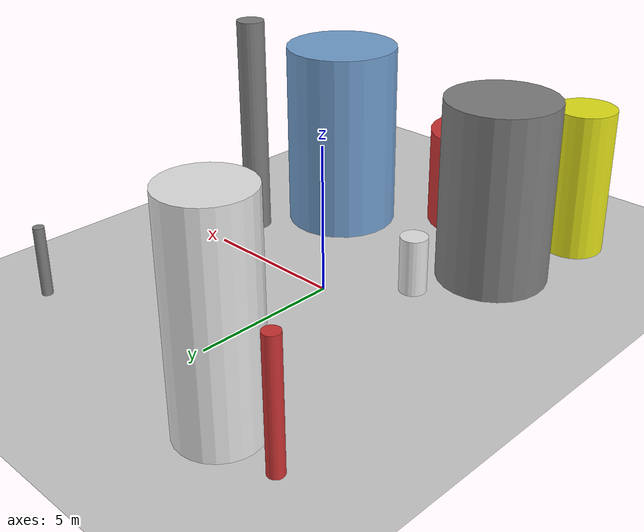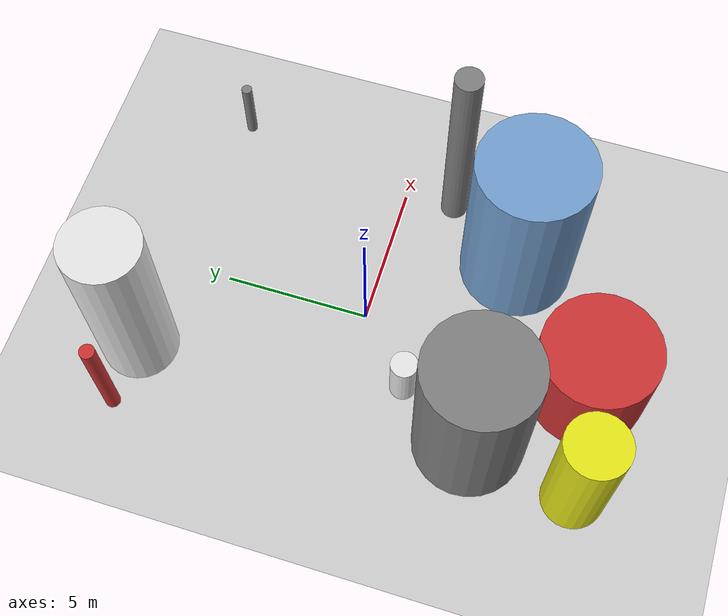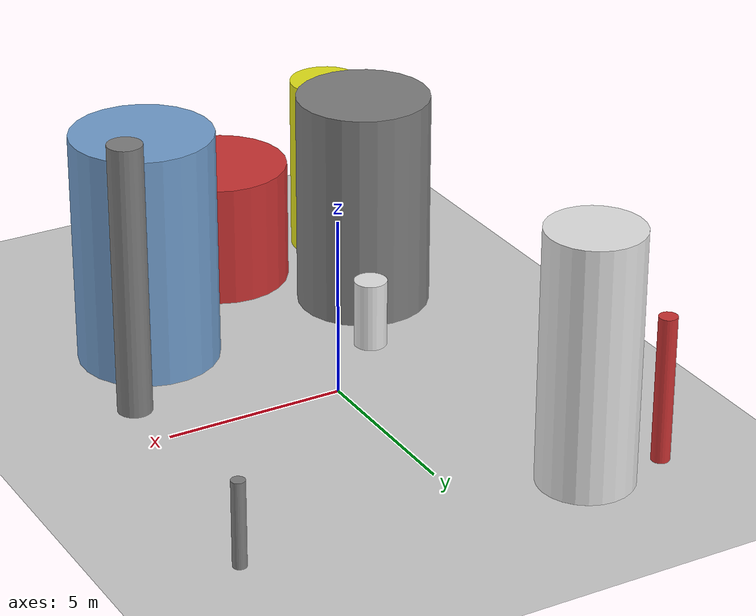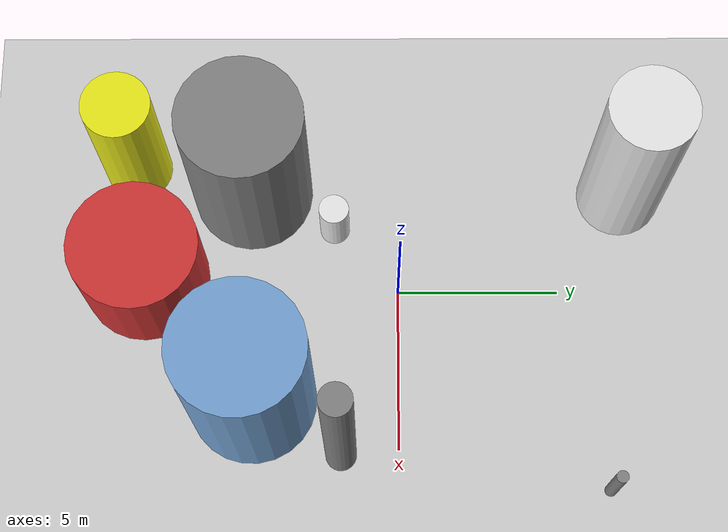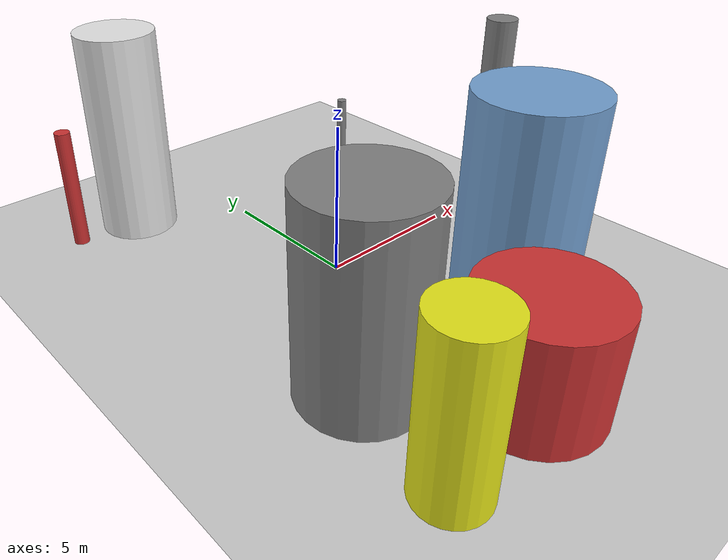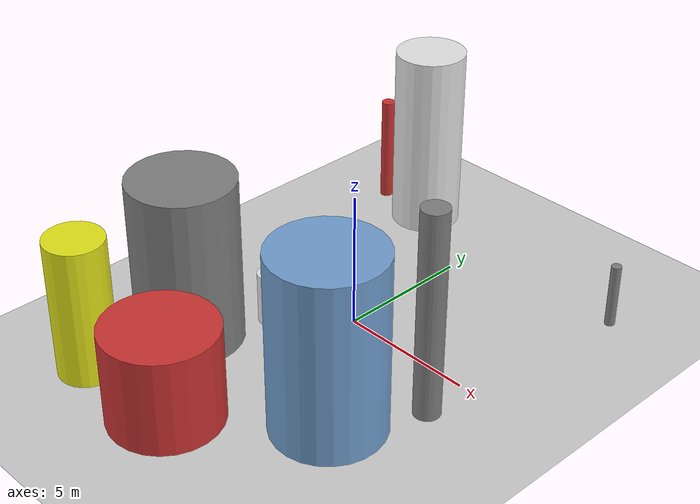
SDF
<?xml version='1.0'?>
<sdf version='1.6'>
  <world name='default'>
    <!-- Sun light -->
    <light name='sun' type='directional'>
      <cast_shadows>1</cast_shadows>
      <pose>0 0 10 0 0 0</pose>
      <diffuse>0.8 0.8 0.8 1</diffuse>
      <specular>0.2 0.2 0.2 1</specular>
      <attenuation>
        <range>1000</range>
        <constant>0.9</constant>
        <linear>0.01</linear>
        <quadratic>0.001</quadratic>
      </attenuation>
      <direction>-0.5 0.1 -0.9</direction>
    </light>

    <!-- Ground plane -->
    <model name='ground_plane'>
      <static>1</static>
      <link name='link'>
        <collision name='collision'>
          <geometry>
            <plane>
              <normal>0 0 1</normal>
              <size>100 100</size>
            </plane>
          </geometry>
          <surface>
            <contact>
              <collide_bitmask>65535</collide_bitmask>
              <ode/>
            </contact>
            <friction>
              <ode>
                <mu>100</mu>
                <mu2>50</mu2>
              </ode>
              <torsional><ode/></torsional>
            </friction>
            <bounce/>
          </surface>
          <max_contacts>10</max_contacts>
        </collision>
        <visual name='visual'>
          <cast_shadows>0</cast_shadows>
          <geometry>
            <plane>
              <normal>0 0 1</normal>
              <size>100 100</size>
            </plane>
          </geometry>
          <material>
            <script>
              <uri>file://media/materials/scripts/gazebo.material</uri>
              <n>Gazebo/Grey</n>
            </script>
          </material>
        </visual>
      </link>
    </model>

    <!-- Environment -->
    <magnetic_field>6e-06 2.3e-05 -4.2e-05</magnetic_field>
    <atmosphere type='adiabatic'/>
    <physics name='default_physics' default='0' type='ode'>
      <gravity>0 0 -9.8</gravity>
      <max_step_size>0.004</max_step_size>
      <real_time_factor>1</real_time_factor>
      <real_time_update_rate>250</real_time_update_rate>
    </physics>
    <scene>
      <ambient>0.4 0.4 0.4 1</ambient>
      <background>0.7 0.7 0.7 1</background>
      <shadows>1</shadows>
    </scene>
    <wind/>
    <spherical_coordinates>
      <surface_model>EARTH_WGS84</surface_model>
      <latitude_deg>0</latitude_deg>
      <longitude_deg>0</longitude_deg>
      <elevation>0</elevation>
      <heading_deg>0</heading_deg>
    </spherical_coordinates>

    <!-- ============ OBSTACLES (9) ============ -->
    <model name='obs_00'>
      <static>1</static>
      <link name='link'>
        <visual name='visual'>
          <geometry>
            <cylinder>
              <radius>0.4625</radius>
              <length>1.9433</length>
            </cylinder>
          </geometry>
          <material>
            <script>
              <n>Gazebo/White</n>
              <uri>file://media/materials/scripts/gazebo.material</uri>
            </script>
            <ambient>0.9 0.9 0.9 1</ambient>
          </material>
        </visual>
        <collision name='collision'>
          <geometry>
            <cylinder>
              <radius>0.4625</radius>
              <length>1.9433</length>
            </cylinder>
          </geometry>
          <max_contacts>10</max_contacts>
          <surface>
            <contact><ode/></contact>
            <bounce/>
            <friction>
              <ode><mu>1</mu><mu2>1</mu2></ode>
              <torsional><ode/></torsional>
            </friction>
          </surface>
        </collision>
      </link>
      <pose>-2.1150 -1.9858 0.9717 0 0 2.7584</pose>
    </model>

    <model name='obs_01'>
      <static>1</static>
      <link name='link'>
        <visual name='visual'>
          <geometry>
            <cylinder>
              <radius>0.1858</radius>
              <length>2.3911</length>
            </cylinder>
          </geometry>
          <material>
            <script>
              <n>Gazebo/Grey</n>
              <uri>file://media/materials/scripts/gazebo.material</uri>
            </script>
            <ambient>0.5 0.5 0.5 1</ambient>
          </material>
        </visual>
        <collision name='collision'>
          <geometry>
            <cylinder>
              <radius>0.1858</radius>
              <length>2.3911</length>
            </cylinder>
          </geometry>
          <max_contacts>10</max_contacts>
          <surface>
            <contact><ode/></contact>
            <bounce/>
            <friction>
              <ode><mu>1</mu><mu2>1</mu2></ode>
              <torsional><ode/></torsional>
            </friction>
          </surface>
        </collision>
      </link>
      <pose>6.2441 6.3900 1.1955 0 0 2.3328</pose>
    </model>

    <model name='obs_02'>
      <static>1</static>
      <link name='link'>
        <visual name='visual'>
          <geometry>
            <cylinder>
              <radius>1.8784</radius>
              <length>6.2021</length>
            </cylinder>
          </geometry>
          <material>
            <script>
              <n>Gazebo/Grey</n>
              <uri>file://media/materials/scripts/gazebo.material</uri>
            </script>
            <ambient>0.5 0.5 0.5 1</ambient>
          </material>
        </visual>
        <collision name='collision'>
          <geometry>
            <cylinder>
              <radius>1.8784</radius>
              <length>6.2021</length>
            </cylinder>
          </geometry>
          <max_contacts>10</max_contacts>
          <surface>
            <contact><ode/></contact>
            <bounce/>
            <friction>
              <ode><mu>1</mu><mu2>1</mu2></ode>
              <torsional><ode/></torsional>
            </friction>
          </surface>
        </collision>
      </link>
      <pose>-3.3472 -4.5872 3.1010 0 0 2.0544</pose>
    </model>

    <model name='obs_03'>
      <static>1</static>
      <link name='link'>
        <visual name='visual'>
          <geometry>
            <cylinder>
              <radius>1.9607</radius>
              <length>6.5563</length>
            </cylinder>
          </geometry>
          <material>
            <script>
              <n>Gazebo/Blue</n>
              <uri>file://media/materials/scripts/gazebo.material</uri>
            </script>
            <ambient>0.447 0.624 0.812 1</ambient>
          </material>
        </visual>
        <collision name='collision'>
          <geometry>
            <cylinder>
              <radius>1.9607</radius>
              <length>6.5563</length>
            </cylinder>
          </geometry>
          <max_contacts>10</max_contacts>
          <surface>
            <contact><ode/></contact>
            <bounce/>
            <friction>
              <ode><mu>1</mu><mu2>1</mu2></ode>
              <torsional><ode/></torsional>
            </friction>
          </surface>
        </collision>
      </link>
      <pose>3.4476 -4.4723 3.2782 0 0 0.6318</pose>
    </model>

    <model name='obs_04'>
      <static>1</static>
      <link name='link'>
        <visual name='visual'>
          <geometry>
            <cylinder>
              <radius>0.4744</radius>
              <length>7.6494</length>
            </cylinder>
          </geometry>
          <material>
            <script>
              <n>Gazebo/Grey</n>
              <uri>file://media/materials/scripts/gazebo.material</uri>
            </script>
            <ambient>0.5 0.5 0.5 1</ambient>
          </material>
        </visual>
        <collision name='collision'>
          <geometry>
            <cylinder>
              <radius>0.4744</radius>
              <length>7.6494</length>
            </cylinder>
          </geometry>
          <max_contacts>10</max_contacts>
          <surface>
            <contact><ode/></contact>
            <bounce/>
            <friction>
              <ode><mu>1</mu><mu2>1</mu2></ode>
              <torsional><ode/></torsional>
            </friction>
          </surface>
        </collision>
      </link>
      <pose>5.1565 -1.7639 3.8247 0 0 0.5773</pose>
    </model>

    <model name='obs_05'>
      <static>1</static>
      <link name='link'>
        <visual name='visual'>
          <geometry>
            <cylinder>
              <radius>1.9728</radius>
              <length>3.4947</length>
            </cylinder>
          </geometry>
          <material>
            <script>
              <n>Gazebo/Red</n>
              <uri>file://media/materials/scripts/gazebo.material</uri>
            </script>
            <ambient>0.8 0.2 0.2 1</ambient>
          </material>
        </visual>
        <collision name='collision'>
          <geometry>
            <cylinder>
              <radius>1.9728</radius>
              <length>3.4947</length>
            </cylinder>
          </geometry>
          <max_contacts>10</max_contacts>
          <surface>
            <contact><ode/></contact>
            <bounce/>
            <friction>
              <ode><mu>1</mu><mu2>1</mu2></ode>
              <torsional><ode/></torsional>
            </friction>
          </surface>
        </collision>
      </link>
      <pose>-0.4631 -7.8861 1.7474 0 0 2.9030</pose>
    </model>

    <model name='obs_06'>
      <static>1</static>
      <link name='link'>
        <visual name='visual'>
          <geometry>
            <cylinder>
              <radius>1.0404</radius>
              <length>5.1474</length>
            </cylinder>
          </geometry>
          <material>
            <script>
              <n>Gazebo/Yellow</n>
              <uri>file://media/materials/scripts/gazebo.material</uri>
            </script>
            <ambient>0.9 0.9 0.1 1</ambient>
          </material>
        </visual>
        <collision name='collision'>
          <geometry>
            <cylinder>
              <radius>1.0404</radius>
              <length>5.1474</length>
            </cylinder>
          </geometry>
          <max_contacts>10</max_contacts>
          <surface>
            <contact><ode/></contact>
            <bounce/>
            <friction>
              <ode><mu>1</mu><mu2>1</mu2></ode>
              <torsional><ode/></torsional>
            </friction>
          </surface>
        </collision>
      </link>
      <pose>-4.1829 -8.2793 2.5737 0 0 3.1120</pose>
    </model>

    <model name='obs_07'>
      <static>1</static>
      <link name='link'>
        <visual name='visual'>
          <geometry>
            <cylinder>
              <radius>0.2522</radius>
              <length>4.1104</length>
            </cylinder>
          </geometry>
          <material>
            <script>
              <n>Gazebo/Red</n>
              <uri>file://media/materials/scripts/gazebo.material</uri>
            </script>
            <ambient>0.8 0.2 0.2 1</ambient>
          </material>
        </visual>
        <collision name='collision'>
          <geometry>
            <cylinder>
              <radius>0.2522</radius>
              <length>4.1104</length>
            </cylinder>
          </geometry>
          <max_contacts>10</max_contacts>
          <surface>
            <contact><ode/></contact>
            <bounce/>
            <friction>
              <ode><mu>1</mu><mu2>1</mu2></ode>
              <torsional><ode/></torsional>
            </friction>
          </surface>
        </collision>
      </link>
      <pose>-5.4517 7.1440 2.0552 0 0 1.4278</pose>
    </model>

    <model name='obs_08'>
      <static>1</static>
      <link name='link'>
        <visual name='visual'>
          <geometry>
            <cylinder>
              <radius>1.3039</radius>
              <length>7.0203</length>
            </cylinder>
          </geometry>
          <material>
            <script>
              <n>Gazebo/White</n>
              <uri>file://media/materials/scripts/gazebo.material</uri>
            </script>
            <ambient>0.9 0.9 0.9 1</ambient>
          </material>
        </visual>
        <collision name='collision'>
          <geometry>
            <cylinder>
              <radius>1.3039</radius>
              <length>7.0203</length>
            </cylinder>
          </geometry>
          <max_contacts>10</max_contacts>
          <surface>
            <contact><ode/></contact>
            <bounce/>
            <friction>
              <ode><mu>1</mu><mu2>1</mu2></ode>
              <torsional><ode/></torsional>
            </friction>
          </surface>
        </collision>
      </link>
      <pose>-3.2212 7.0391 3.5101 0 0 0.2745</pose>
    </model>

    <!-- GUI camera -->
    <gui fullscreen='0'>
      <camera name='user_camera'>
        <pose>-15 0 18 0 0.85 0.15</pose>
        <view_controller>orbit</view_controller>
        <projection_type>perspective</projection_type>
      </camera>
    </gui>
  </world>
</sdf>
